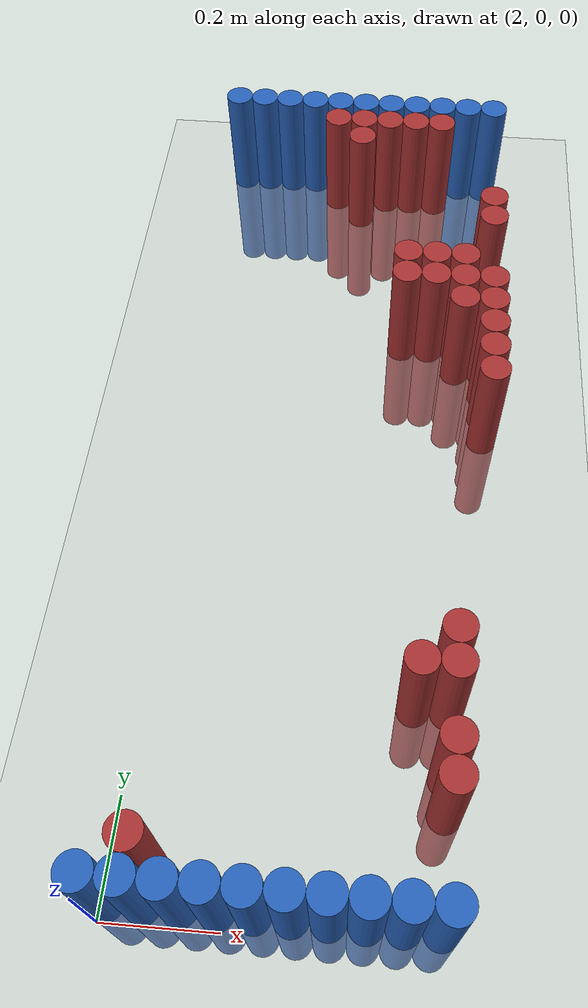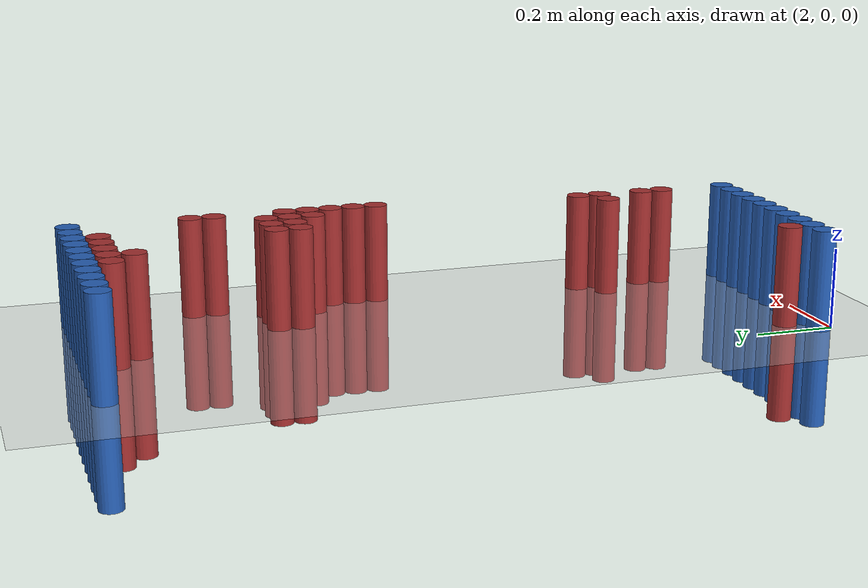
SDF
<sdf version="1.6">
 <world name="default">
  <model name="ground_plane">
   <static>1</static>
   <link name="link">
    <collision name="collision">
     <geometry><plane><normal>0 0 1</normal><size>100 100</size></plane></geometry>
     <surface><friction><ode><mu>100</mu><mu2>50</mu2></ode></friction></surface>
    </collision>
    <visual name="visual">
     <cast_shadows>0</cast_shadows>
     <geometry><plane><normal>0 0 1</normal><size>100 100</size></plane></geometry>
     <material>
      <script><uri>file://media/materials/scripts/gazebo.material</uri><name>Gazebo/Grey</name></script>
     </material>
    </visual>
   </link>
  </model>
  <model name="unit_cylinder_93">
   <static>1</static>
   <pose>2.010000 0.030000 0.000000 0.000000 0.000000 0.000000</pose>
   <link name="link">
    <inertial>
     <mass>1</mass>
     <inertia><ixx>0.145833</ixx><ixy>0</ixy><ixz>0</ixz><iyy>0.145833</iyy><iyz>0</iyz><izz>0.125</izz></inertia>
    </inertial>
    <collision name="collision">
     <geometry><cylinder><radius>0.030000</radius><length>0.5</length></cylinder></geometry>
    </collision>
    <visual name="visual">
     <geometry><cylinder><radius>0.030000</radius><length>0.5</length></cylinder></geometry>
     <material>
      <ambient>0.152000 0.379000 0.720000 1</ambient>
      <diffuse>0.152000 0.379000 0.720000 1</diffuse>
     </material>
     <material>
      <script><name>Gazebo/Grey</name><uri>file://media/materials/scripts/gazebo.material</uri></script>
     </material>
    </visual>
   </link>
  </model>
  <model name="unit_cylinder_94">
   <static>1</static>
   <pose>2.010000 1.770000 0.000000 0.000000 0.000000 0.000000</pose>
   <link name="link">
    <inertial>
     <mass>1</mass>
     <inertia><ixx>0.145833</ixx><ixy>0</ixy><ixz>0</ixz><iyy>0.145833</iyy><iyz>0</iyz><izz>0.125</izz></inertia>
    </inertial>
    <collision name="collision">
     <geometry><cylinder><radius>0.030000</radius><length>0.5</length></cylinder></geometry>
    </collision>
    <visual name="visual">
     <geometry><cylinder><radius>0.030000</radius><length>0.5</length></cylinder></geometry>
     <material>
      <ambient>0.152000 0.379000 0.720000 1</ambient>
      <diffuse>0.152000 0.379000 0.720000 1</diffuse>
     </material>
     <material>
      <script><name>Gazebo/Grey</name><uri>file://media/materials/scripts/gazebo.material</uri></script>
     </material>
    </visual>
   </link>
  </model>
  <model name="unit_cylinder_95">
   <static>1</static>
   <pose>2.070000 1.770000 0.000000 0.000000 0.000000 0.000000</pose>
   <link name="link">
    <inertial>
     <mass>1</mass>
     <inertia><ixx>0.145833</ixx><ixy>0</ixy><ixz>0</ixz><iyy>0.145833</iyy><iyz>0</iyz><izz>0.125</izz></inertia>
    </inertial>
    <collision name="collision">
     <geometry><cylinder><radius>0.030000</radius><length>0.5</length></cylinder></geometry>
    </collision>
    <visual name="visual">
     <geometry><cylinder><radius>0.030000</radius><length>0.5</length></cylinder></geometry>
     <material>
      <ambient>0.152000 0.379000 0.720000 1</ambient>
      <diffuse>0.152000 0.379000 0.720000 1</diffuse>
     </material>
     <material>
      <script><name>Gazebo/Grey</name><uri>file://media/materials/scripts/gazebo.material</uri></script>
     </material>
    </visual>
   </link>
  </model>
  <model name="unit_cylinder_96">
   <static>1</static>
   <pose>2.130000 1.770000 0.000000 0.000000 0.000000 0.000000</pose>
   <link name="link">
    <inertial>
     <mass>1</mass>
     <inertia><ixx>0.145833</ixx><ixy>0</ixy><ixz>0</ixz><iyy>0.145833</iyy><iyz>0</iyz><izz>0.125</izz></inertia>
    </inertial>
    <collision name="collision">
     <geometry><cylinder><radius>0.030000</radius><length>0.5</length></cylinder></geometry>
    </collision>
    <visual name="visual">
     <geometry><cylinder><radius>0.030000</radius><length>0.5</length></cylinder></geometry>
     <material>
      <ambient>0.152000 0.379000 0.720000 1</ambient>
      <diffuse>0.152000 0.379000 0.720000 1</diffuse>
     </material>
     <material>
      <script><name>Gazebo/Grey</name><uri>file://media/materials/scripts/gazebo.material</uri></script>
     </material>
    </visual>
   </link>
  </model>
  <model name="unit_cylinder_97">
   <static>1</static>
   <pose>2.190000 1.770000 0.000000 0.000000 0.000000 0.000000</pose>
   <link name="link">
    <inertial>
     <mass>1</mass>
     <inertia><ixx>0.145833</ixx><ixy>0</ixy><ixz>0</ixz><iyy>0.145833</iyy><iyz>0</iyz><izz>0.125</izz></inertia>
    </inertial>
    <collision name="collision">
     <geometry><cylinder><radius>0.030000</radius><length>0.5</length></cylinder></geometry>
    </collision>
    <visual name="visual">
     <geometry><cylinder><radius>0.030000</radius><length>0.5</length></cylinder></geometry>
     <material>
      <ambient>0.152000 0.379000 0.720000 1</ambient>
      <diffuse>0.152000 0.379000 0.720000 1</diffuse>
     </material>
     <material>
      <script><name>Gazebo/Grey</name><uri>file://media/materials/scripts/gazebo.material</uri></script>
     </material>
    </visual>
   </link>
  </model>
  <model name="unit_cylinder_98">
   <static>1</static>
   <pose>2.250000 1.770000 0.000000 0.000000 0.000000 0.000000</pose>
   <link name="link">
    <inertial>
     <mass>1</mass>
     <inertia><ixx>0.145833</ixx><ixy>0</ixy><ixz>0</ixz><iyy>0.145833</iyy><iyz>0</iyz><izz>0.125</izz></inertia>
    </inertial>
    <collision name="collision">
     <geometry><cylinder><radius>0.030000</radius><length>0.5</length></cylinder></geometry>
    </collision>
    <visual name="visual">
     <geometry><cylinder><radius>0.030000</radius><length>0.5</length></cylinder></geometry>
     <material>
      <ambient>0.152000 0.379000 0.720000 1</ambient>
      <diffuse>0.152000 0.379000 0.720000 1</diffuse>
     </material>
     <material>
      <script><name>Gazebo/Grey</name><uri>file://media/materials/scripts/gazebo.material</uri></script>
     </material>
    </visual>
   </link>
  </model>
  <model name="unit_cylinder_99">
   <static>1</static>
   <pose>2.310000 1.770000 0.000000 0.000000 0.000000 0.000000</pose>
   <link name="link">
    <inertial>
     <mass>1</mass>
     <inertia><ixx>0.145833</ixx><ixy>0</ixy><ixz>0</ixz><iyy>0.145833</iyy><iyz>0</iyz><izz>0.125</izz></inertia>
    </inertial>
    <collision name="collision">
     <geometry><cylinder><radius>0.030000</radius><length>0.5</length></cylinder></geometry>
    </collision>
    <visual name="visual">
     <geometry><cylinder><radius>0.030000</radius><length>0.5</length></cylinder></geometry>
     <material>
      <ambient>0.152000 0.379000 0.720000 1</ambient>
      <diffuse>0.152000 0.379000 0.720000 1</diffuse>
     </material>
     <material>
      <script><name>Gazebo/Grey</name><uri>file://media/materials/scripts/gazebo.material</uri></script>
     </material>
    </visual>
   </link>
  </model>
  <model name="unit_cylinder_100">
   <static>1</static>
   <pose>2.370000 1.770000 0.000000 0.000000 0.000000 0.000000</pose>
   <link name="link">
    <inertial>
     <mass>1</mass>
     <inertia><ixx>0.145833</ixx><ixy>0</ixy><ixz>0</ixz><iyy>0.145833</iyy><iyz>0</iyz><izz>0.125</izz></inertia>
    </inertial>
    <collision name="collision">
     <geometry><cylinder><radius>0.030000</radius><length>0.5</length></cylinder></geometry>
    </collision>
    <visual name="visual">
     <geometry><cylinder><radius>0.030000</radius><length>0.5</length></cylinder></geometry>
     <material>
      <ambient>0.152000 0.379000 0.720000 1</ambient>
      <diffuse>0.152000 0.379000 0.720000 1</diffuse>
     </material>
     <material>
      <script><name>Gazebo/Grey</name><uri>file://media/materials/scripts/gazebo.material</uri></script>
     </material>
    </visual>
   </link>
  </model>
  <model name="unit_cylinder_101">
   <static>1</static>
   <pose>2.430000 1.770000 0.000000 0.000000 0.000000 0.000000</pose>
   <link name="link">
    <inertial>
     <mass>1</mass>
     <inertia><ixx>0.145833</ixx><ixy>0</ixy><ixz>0</ixz><iyy>0.145833</iyy><iyz>0</iyz><izz>0.125</izz></inertia>
    </inertial>
    <collision name="collision">
     <geometry><cylinder><radius>0.030000</radius><length>0.5</length></cylinder></geometry>
    </collision>
    <visual name="visual">
     <geometry><cylinder><radius>0.030000</radius><length>0.5</length></cylinder></geometry>
     <material>
      <ambient>0.152000 0.379000 0.720000 1</ambient>
      <diffuse>0.152000 0.379000 0.720000 1</diffuse>
     </material>
     <material>
      <script><name>Gazebo/Grey</name><uri>file://media/materials/scripts/gazebo.material</uri></script>
     </material>
    </visual>
   </link>
  </model>
  <model name="unit_cylinder_102">
   <static>1</static>
   <pose>2.490000 1.770000 0.000000 0.000000 0.000000 0.000000</pose>
   <link name="link">
    <inertial>
     <mass>1</mass>
     <inertia><ixx>0.145833</ixx><ixy>0</ixy><ixz>0</ixz><iyy>0.145833</iyy><iyz>0</iyz><izz>0.125</izz></inertia>
    </inertial>
    <collision name="collision">
     <geometry><cylinder><radius>0.030000</radius><length>0.5</length></cylinder></geometry>
    </collision>
    <visual name="visual">
     <geometry><cylinder><radius>0.030000</radius><length>0.5</length></cylinder></geometry>
     <material>
      <ambient>0.152000 0.379000 0.720000 1</ambient>
      <diffuse>0.152000 0.379000 0.720000 1</diffuse>
     </material>
     <material>
      <script><name>Gazebo/Grey</name><uri>file://media/materials/scripts/gazebo.material</uri></script>
     </material>
    </visual>
   </link>
  </model>
  <model name="unit_cylinder_103">
   <static>1</static>
   <pose>2.550000 1.770000 0.000000 0.000000 0.000000 0.000000</pose>
   <link name="link">
    <inertial>
     <mass>1</mass>
     <inertia><ixx>0.145833</ixx><ixy>0</ixy><ixz>0</ixz><iyy>0.145833</iyy><iyz>0</iyz><izz>0.125</izz></inertia>
    </inertial>
    <collision name="collision">
     <geometry><cylinder><radius>0.030000</radius><length>0.5</length></cylinder></geometry>
    </collision>
    <visual name="visual">
     <geometry><cylinder><radius>0.030000</radius><length>0.5</length></cylinder></geometry>
     <material>
      <ambient>0.152000 0.379000 0.720000 1</ambient>
      <diffuse>0.152000 0.379000 0.720000 1</diffuse>
     </material>
     <material>
      <script><name>Gazebo/Grey</name><uri>file://media/materials/scripts/gazebo.material</uri></script>
     </material>
    </visual>
   </link>
  </model>
  <model name="unit_cylinder_104">
   <static>1</static>
   <pose>2.610000 1.770000 0.000000 0.000000 0.000000 0.000000</pose>
   <link name="link">
    <inertial>
     <mass>1</mass>
     <inertia><ixx>0.145833</ixx><ixy>0</ixy><ixz>0</ixz><iyy>0.145833</iyy><iyz>0</iyz><izz>0.125</izz></inertia>
    </inertial>
    <collision name="collision">
     <geometry><cylinder><radius>0.030000</radius><length>0.5</length></cylinder></geometry>
    </collision>
    <visual name="visual">
     <geometry><cylinder><radius>0.030000</radius><length>0.5</length></cylinder></geometry>
     <material>
      <ambient>0.152000 0.379000 0.720000 1</ambient>
      <diffuse>0.152000 0.379000 0.720000 1</diffuse>
     </material>
     <material>
      <script><name>Gazebo/Grey</name><uri>file://media/materials/scripts/gazebo.material</uri></script>
     </material>
    </visual>
   </link>
  </model>
  <model name="unit_cylinder_125">
   <static>1</static>
   <pose>2.250000 1.710000 0.000000 0.000000 0.000000 0.000000</pose>
   <link name="link">
    <inertial>
     <mass>1</mass>
     <inertia><ixx>0.145833</ixx><ixy>0</ixy><ixz>0</ixz><iyy>0.145833</iyy><iyz>0</iyz><izz>0.125</izz></inertia>
    </inertial>
    <collision name="collision">
     <geometry><cylinder><radius>0.030000</radius><length>0.5</length></cylinder></geometry>
    </collision>
    <visual name="visual">
     <geometry><cylinder><radius>0.030000</radius><length>0.5</length></cylinder></geometry>
     <material>
      <ambient>0.648000 0.192000 0.192000 1</ambient>
      <diffuse>0.648000 0.192000 0.192000 1</diffuse>
     </material>
     <material>
      <script><name>Gazebo/Grey</name><uri>file://media/materials/scripts/gazebo.material</uri></script>
     </material>
    </visual>
   </link>
  </model>
  <model name="unit_cylinder_126">
   <static>1</static>
   <pose>2.310000 1.710000 0.000000 0.000000 0.000000 0.000000</pose>
   <link name="link">
    <inertial>
     <mass>1</mass>
     <inertia><ixx>0.145833</ixx><ixy>0</ixy><ixz>0</ixz><iyy>0.145833</iyy><iyz>0</iyz><izz>0.125</izz></inertia>
    </inertial>
    <collision name="collision">
     <geometry><cylinder><radius>0.030000</radius><length>0.5</length></cylinder></geometry>
    </collision>
    <visual name="visual">
     <geometry><cylinder><radius>0.030000</radius><length>0.5</length></cylinder></geometry>
     <material>
      <ambient>0.648000 0.192000 0.192000 1</ambient>
      <diffuse>0.648000 0.192000 0.192000 1</diffuse>
     </material>
     <material>
      <script><name>Gazebo/Grey</name><uri>file://media/materials/scripts/gazebo.material</uri></script>
     </material>
    </visual>
   </link>
  </model>
  <model name="unit_cylinder_127">
   <static>1</static>
   <pose>2.370000 1.710000 0.000000 0.000000 0.000000 0.000000</pose>
   <link name="link">
    <inertial>
     <mass>1</mass>
     <inertia><ixx>0.145833</ixx><ixy>0</ixy><ixz>0</ixz><iyy>0.145833</iyy><iyz>0</iyz><izz>0.125</izz></inertia>
    </inertial>
    <collision name="collision">
     <geometry><cylinder><radius>0.030000</radius><length>0.5</length></cylinder></geometry>
    </collision>
    <visual name="visual">
     <geometry><cylinder><radius>0.030000</radius><length>0.5</length></cylinder></geometry>
     <material>
      <ambient>0.648000 0.192000 0.192000 1</ambient>
      <diffuse>0.648000 0.192000 0.192000 1</diffuse>
     </material>
     <material>
      <script><name>Gazebo/Grey</name><uri>file://media/materials/scripts/gazebo.material</uri></script>
     </material>
    </visual>
   </link>
  </model>
  <model name="unit_cylinder_128">
   <static>1</static>
   <pose>2.430000 1.710000 0.000000 0.000000 0.000000 0.000000</pose>
   <link name="link">
    <inertial>
     <mass>1</mass>
     <inertia><ixx>0.145833</ixx><ixy>0</ixy><ixz>0</ixz><iyy>0.145833</iyy><iyz>0</iyz><izz>0.125</izz></inertia>
    </inertial>
    <collision name="collision">
     <geometry><cylinder><radius>0.030000</radius><length>0.5</length></cylinder></geometry>
    </collision>
    <visual name="visual">
     <geometry><cylinder><radius>0.030000</radius><length>0.5</length></cylinder></geometry>
     <material>
      <ambient>0.648000 0.192000 0.192000 1</ambient>
      <diffuse>0.648000 0.192000 0.192000 1</diffuse>
     </material>
     <material>
      <script><name>Gazebo/Grey</name><uri>file://media/materials/scripts/gazebo.material</uri></script>
     </material>
    </visual>
   </link>
  </model>
  <model name="unit_cylinder_129">
   <static>1</static>
   <pose>2.490000 1.710000 0.000000 0.000000 0.000000 0.000000</pose>
   <link name="link">
    <inertial>
     <mass>1</mass>
     <inertia><ixx>0.145833</ixx><ixy>0</ixy><ixz>0</ixz><iyy>0.145833</iyy><iyz>0</iyz><izz>0.125</izz></inertia>
    </inertial>
    <collision name="collision">
     <geometry><cylinder><radius>0.030000</radius><length>0.5</length></cylinder></geometry>
    </collision>
    <visual name="visual">
     <geometry><cylinder><radius>0.030000</radius><length>0.5</length></cylinder></geometry>
     <material>
      <ambient>0.648000 0.192000 0.192000 1</ambient>
      <diffuse>0.648000 0.192000 0.192000 1</diffuse>
     </material>
     <material>
      <script><name>Gazebo/Grey</name><uri>file://media/materials/scripts/gazebo.material</uri></script>
     </material>
    </visual>
   </link>
  </model>
  <model name="unit_cylinder_136">
   <static>1</static>
   <pose>2.310000 1.650000 0.000000 0.000000 0.000000 0.000000</pose>
   <link name="link">
    <inertial>
     <mass>1</mass>
     <inertia><ixx>0.145833</ixx><ixy>0</ixy><ixz>0</ixz><iyy>0.145833</iyy><iyz>0</iyz><izz>0.125</izz></inertia>
    </inertial>
    <collision name="collision">
     <geometry><cylinder><radius>0.030000</radius><length>0.5</length></cylinder></geometry>
    </collision>
    <visual name="visual">
     <geometry><cylinder><radius>0.030000</radius><length>0.5</length></cylinder></geometry>
     <material>
      <ambient>0.648000 0.192000 0.192000 1</ambient>
      <diffuse>0.648000 0.192000 0.192000 1</diffuse>
     </material>
     <material>
      <script><name>Gazebo/Grey</name><uri>file://media/materials/scripts/gazebo.material</uri></script>
     </material>
    </visual>
   </link>
  </model>
  <model name="unit_cylinder_143">
   <static>1</static>
   <pose>2.610000 1.470000 0.000000 0.000000 0.000000 0.000000</pose>
   <link name="link">
    <inertial>
     <mass>1</mass>
     <inertia><ixx>0.145833</ixx><ixy>0</ixy><ixz>0</ixz><iyy>0.145833</iyy><iyz>0</iyz><izz>0.125</izz></inertia>
    </inertial>
    <collision name="collision">
     <geometry><cylinder><radius>0.030000</radius><length>0.5</length></cylinder></geometry>
    </collision>
    <visual name="visual">
     <geometry><cylinder><radius>0.030000</radius><length>0.5</length></cylinder></geometry>
     <material>
      <ambient>0.648000 0.192000 0.192000 1</ambient>
      <diffuse>0.648000 0.192000 0.192000 1</diffuse>
     </material>
     <material>
      <script><name>Gazebo/Grey</name><uri>file://media/materials/scripts/gazebo.material</uri></script>
     </material>
    </visual>
   </link>
  </model>
  <model name="unit_cylinder_144">
   <static>1</static>
   <pose>2.610000 1.410000 0.000000 0.000000 0.000000 0.000000</pose>
   <link name="link">
    <inertial>
     <mass>1</mass>
     <inertia><ixx>0.145833</ixx><ixy>0</ixy><ixz>0</ixz><iyy>0.145833</iyy><iyz>0</iyz><izz>0.125</izz></inertia>
    </inertial>
    <collision name="collision">
     <geometry><cylinder><radius>0.030000</radius><length>0.5</length></cylinder></geometry>
    </collision>
    <visual name="visual">
     <geometry><cylinder><radius>0.030000</radius><length>0.5</length></cylinder></geometry>
     <material>
      <ambient>0.648000 0.192000 0.192000 1</ambient>
      <diffuse>0.648000 0.192000 0.192000 1</diffuse>
     </material>
     <material>
      <script><name>Gazebo/Grey</name><uri>file://media/materials/scripts/gazebo.material</uri></script>
     </material>
    </visual>
   </link>
  </model>
  <model name="unit_cylinder_146">
   <static>1</static>
   <pose>2.430000 1.290000 0.000000 0.000000 0.000000 0.000000</pose>
   <link name="link">
    <inertial>
     <mass>1</mass>
     <inertia><ixx>0.145833</ixx><ixy>0</ixy><ixz>0</ixz><iyy>0.145833</iyy><iyz>0</iyz><izz>0.125</izz></inertia>
    </inertial>
    <collision name="collision">
     <geometry><cylinder><radius>0.030000</radius><length>0.5</length></cylinder></geometry>
    </collision>
    <visual name="visual">
     <geometry><cylinder><radius>0.030000</radius><length>0.5</length></cylinder></geometry>
     <material>
      <ambient>0.648000 0.192000 0.192000 1</ambient>
      <diffuse>0.648000 0.192000 0.192000 1</diffuse>
     </material>
     <material>
      <script><name>Gazebo/Grey</name><uri>file://media/materials/scripts/gazebo.material</uri></script>
     </material>
    </visual>
   </link>
  </model>
  <model name="unit_cylinder_147">
   <static>1</static>
   <pose>2.490000 1.290000 0.000000 0.000000 0.000000 0.000000</pose>
   <link name="link">
    <inertial>
     <mass>1</mass>
     <inertia><ixx>0.145833</ixx><ixy>0</ixy><ixz>0</ixz><iyy>0.145833</iyy><iyz>0</iyz><izz>0.125</izz></inertia>
    </inertial>
    <collision name="collision">
     <geometry><cylinder><radius>0.030000</radius><length>0.5</length></cylinder></geometry>
    </collision>
    <visual name="visual">
     <geometry><cylinder><radius>0.030000</radius><length>0.5</length></cylinder></geometry>
     <material>
      <ambient>0.648000 0.192000 0.192000 1</ambient>
      <diffuse>0.648000 0.192000 0.192000 1</diffuse>
     </material>
     <material>
      <script><name>Gazebo/Grey</name><uri>file://media/materials/scripts/gazebo.material</uri></script>
     </material>
    </visual>
   </link>
  </model>
  <model name="unit_cylinder_148">
   <static>1</static>
   <pose>2.550000 1.290000 0.000000 0.000000 0.000000 0.000000</pose>
   <link name="link">
    <inertial>
     <mass>1</mass>
     <inertia><ixx>0.145833</ixx><ixy>0</ixy><ixz>0</ixz><iyy>0.145833</iyy><iyz>0</iyz><izz>0.125</izz></inertia>
    </inertial>
    <collision name="collision">
     <geometry><cylinder><radius>0.030000</radius><length>0.5</length></cylinder></geometry>
    </collision>
    <visual name="visual">
     <geometry><cylinder><radius>0.030000</radius><length>0.5</length></cylinder></geometry>
     <material>
      <ambient>0.648000 0.192000 0.192000 1</ambient>
      <diffuse>0.648000 0.192000 0.192000 1</diffuse>
     </material>
     <material>
      <script><name>Gazebo/Grey</name><uri>file://media/materials/scripts/gazebo.material</uri></script>
     </material>
    </visual>
   </link>
  </model>
  <model name="unit_cylinder_149">
   <static>1</static>
   <pose>2.430000 1.230000 0.000000 0.000000 0.000000 0.000000</pose>
   <link name="link">
    <inertial>
     <mass>1</mass>
     <inertia><ixx>0.145833</ixx><ixy>0</ixy><ixz>0</ixz><iyy>0.145833</iyy><iyz>0</iyz><izz>0.125</izz></inertia>
    </inertial>
    <collision name="collision">
     <geometry><cylinder><radius>0.030000</radius><length>0.5</length></cylinder></geometry>
    </collision>
    <visual name="visual">
     <geometry><cylinder><radius>0.030000</radius><length>0.5</length></cylinder></geometry>
     <material>
      <ambient>0.648000 0.192000 0.192000 1</ambient>
      <diffuse>0.648000 0.192000 0.192000 1</diffuse>
     </material>
     <material>
      <script><name>Gazebo/Grey</name><uri>file://media/materials/scripts/gazebo.material</uri></script>
     </material>
    </visual>
   </link>
  </model>
  <model name="unit_cylinder_150">
   <static>1</static>
   <pose>2.490000 1.230000 0.000000 0.000000 0.000000 0.000000</pose>
   <link name="link">
    <inertial>
     <mass>1</mass>
     <inertia><ixx>0.145833</ixx><ixy>0</ixy><ixz>0</ixz><iyy>0.145833</iyy><iyz>0</iyz><izz>0.125</izz></inertia>
    </inertial>
    <collision name="collision">
     <geometry><cylinder><radius>0.030000</radius><length>0.5</length></cylinder></geometry>
    </collision>
    <visual name="visual">
     <geometry><cylinder><radius>0.030000</radius><length>0.5</length></cylinder></geometry>
     <material>
      <ambient>0.648000 0.192000 0.192000 1</ambient>
      <diffuse>0.648000 0.192000 0.192000 1</diffuse>
     </material>
     <material>
      <script><name>Gazebo/Grey</name><uri>file://media/materials/scripts/gazebo.material</uri></script>
     </material>
    </visual>
   </link>
  </model>
  <model name="unit_cylinder_151">
   <static>1</static>
   <pose>2.550000 1.230000 0.000000 0.000000 0.000000 0.000000</pose>
   <link name="link">
    <inertial>
     <mass>1</mass>
     <inertia><ixx>0.145833</ixx><ixy>0</ixy><ixz>0</ixz><iyy>0.145833</iyy><iyz>0</iyz><izz>0.125</izz></inertia>
    </inertial>
    <collision name="collision">
     <geometry><cylinder><radius>0.030000</radius><length>0.5</length></cylinder></geometry>
    </collision>
    <visual name="visual">
     <geometry><cylinder><radius>0.030000</radius><length>0.5</length></cylinder></geometry>
     <material>
      <ambient>0.648000 0.192000 0.192000 1</ambient>
      <diffuse>0.648000 0.192000 0.192000 1</diffuse>
     </material>
     <material>
      <script><name>Gazebo/Grey</name><uri>file://media/materials/scripts/gazebo.material</uri></script>
     </material>
    </visual>
   </link>
  </model>
  <model name="unit_cylinder_152">
   <static>1</static>
   <pose>2.610000 1.230000 0.000000 0.000000 0.000000 0.000000</pose>
   <link name="link">
    <inertial>
     <mass>1</mass>
     <inertia><ixx>0.145833</ixx><ixy>0</ixy><ixz>0</ixz><iyy>0.145833</iyy><iyz>0</iyz><izz>0.125</izz></inertia>
    </inertial>
    <collision name="collision">
     <geometry><cylinder><radius>0.030000</radius><length>0.5</length></cylinder></geometry>
    </collision>
    <visual name="visual">
     <geometry><cylinder><radius>0.030000</radius><length>0.5</length></cylinder></geometry>
     <material>
      <ambient>0.648000 0.192000 0.192000 1</ambient>
      <diffuse>0.648000 0.192000 0.192000 1</diffuse>
     </material>
     <material>
      <script><name>Gazebo/Grey</name><uri>file://media/materials/scripts/gazebo.material</uri></script>
     </material>
    </visual>
   </link>
  </model>
  <model name="unit_cylinder_153">
   <static>1</static>
   <pose>2.550000 1.170000 0.000000 0.000000 0.000000 0.000000</pose>
   <link name="link">
    <inertial>
     <mass>1</mass>
     <inertia><ixx>0.145833</ixx><ixy>0</ixy><ixz>0</ixz><iyy>0.145833</iyy><iyz>0</iyz><izz>0.125</izz></inertia>
    </inertial>
    <collision name="collision">
     <geometry><cylinder><radius>0.030000</radius><length>0.5</length></cylinder></geometry>
    </collision>
    <visual name="visual">
     <geometry><cylinder><radius>0.030000</radius><length>0.5</length></cylinder></geometry>
     <material>
      <ambient>0.648000 0.192000 0.192000 1</ambient>
      <diffuse>0.648000 0.192000 0.192000 1</diffuse>
     </material>
     <material>
      <script><name>Gazebo/Grey</name><uri>file://media/materials/scripts/gazebo.material</uri></script>
     </material>
    </visual>
   </link>
  </model>
  <model name="unit_cylinder_154">
   <static>1</static>
   <pose>2.610000 1.170000 0.000000 0.000000 0.000000 0.000000</pose>
   <link name="link">
    <inertial>
     <mass>1</mass>
     <inertia><ixx>0.145833</ixx><ixy>0</ixy><ixz>0</ixz><iyy>0.145833</iyy><iyz>0</iyz><izz>0.125</izz></inertia>
    </inertial>
    <collision name="collision">
     <geometry><cylinder><radius>0.030000</radius><length>0.5</length></cylinder></geometry>
    </collision>
    <visual name="visual">
     <geometry><cylinder><radius>0.030000</radius><length>0.5</length></cylinder></geometry>
     <material>
      <ambient>0.648000 0.192000 0.192000 1</ambient>
      <diffuse>0.648000 0.192000 0.192000 1</diffuse>
     </material>
     <material>
      <script><name>Gazebo/Grey</name><uri>file://media/materials/scripts/gazebo.material</uri></script>
     </material>
    </visual>
   </link>
  </model>
  <model name="unit_cylinder_157">
   <static>1</static>
   <pose>2.610000 1.110000 0.000000 0.000000 0.000000 0.000000</pose>
   <link name="link">
    <inertial>
     <mass>1</mass>
     <inertia><ixx>0.145833</ixx><ixy>0</ixy><ixz>0</ixz><iyy>0.145833</iyy><iyz>0</iyz><izz>0.125</izz></inertia>
    </inertial>
    <collision name="collision">
     <geometry><cylinder><radius>0.030000</radius><length>0.5</length></cylinder></geometry>
    </collision>
    <visual name="visual">
     <geometry><cylinder><radius>0.030000</radius><length>0.5</length></cylinder></geometry>
     <material>
      <ambient>0.648000 0.192000 0.192000 1</ambient>
      <diffuse>0.648000 0.192000 0.192000 1</diffuse>
     </material>
     <material>
      <script><name>Gazebo/Grey</name><uri>file://media/materials/scripts/gazebo.material</uri></script>
     </material>
    </visual>
   </link>
  </model>
  <model name="unit_cylinder_162">
   <static>1</static>
   <pose>2.610000 1.050000 0.000000 0.000000 0.000000 0.000000</pose>
   <link name="link">
    <inertial>
     <mass>1</mass>
     <inertia><ixx>0.145833</ixx><ixy>0</ixy><ixz>0</ixz><iyy>0.145833</iyy><iyz>0</iyz><izz>0.125</izz></inertia>
    </inertial>
    <collision name="collision">
     <geometry><cylinder><radius>0.030000</radius><length>0.5</length></cylinder></geometry>
    </collision>
    <visual name="visual">
     <geometry><cylinder><radius>0.030000</radius><length>0.5</length></cylinder></geometry>
     <material>
      <ambient>0.648000 0.192000 0.192000 1</ambient>
      <diffuse>0.648000 0.192000 0.192000 1</diffuse>
     </material>
     <material>
      <script><name>Gazebo/Grey</name><uri>file://media/materials/scripts/gazebo.material</uri></script>
     </material>
    </visual>
   </link>
  </model>
  <model name="unit_cylinder_167">
   <static>1</static>
   <pose>2.610000 0.990000 0.000000 0.000000 0.000000 0.000000</pose>
   <link name="link">
    <inertial>
     <mass>1</mass>
     <inertia><ixx>0.145833</ixx><ixy>0</ixy><ixz>0</ixz><iyy>0.145833</iyy><iyz>0</iyz><izz>0.125</izz></inertia>
    </inertial>
    <collision name="collision">
     <geometry><cylinder><radius>0.030000</radius><length>0.5</length></cylinder></geometry>
    </collision>
    <visual name="visual">
     <geometry><cylinder><radius>0.030000</radius><length>0.5</length></cylinder></geometry>
     <material>
      <ambient>0.648000 0.192000 0.192000 1</ambient>
      <diffuse>0.648000 0.192000 0.192000 1</diffuse>
     </material>
     <material>
      <script><name>Gazebo/Grey</name><uri>file://media/materials/scripts/gazebo.material</uri></script>
     </material>
    </visual>
   </link>
  </model>
  <model name="unit_cylinder_184">
   <static>1</static>
   <pose>2.550000 0.450000 0.000000 0.000000 0.000000 0.000000</pose>
   <link name="link">
    <inertial>
     <mass>1</mass>
     <inertia><ixx>0.145833</ixx><ixy>0</ixy><ixz>0</ixz><iyy>0.145833</iyy><iyz>0</iyz><izz>0.125</izz></inertia>
    </inertial>
    <collision name="collision">
     <geometry><cylinder><radius>0.030000</radius><length>0.5</length></cylinder></geometry>
    </collision>
    <visual name="visual">
     <geometry><cylinder><radius>0.030000</radius><length>0.5</length></cylinder></geometry>
     <material>
      <ambient>0.648000 0.192000 0.192000 1</ambient>
      <diffuse>0.648000 0.192000 0.192000 1</diffuse>
     </material>
     <material>
      <script><name>Gazebo/Grey</name><uri>file://media/materials/scripts/gazebo.material</uri></script>
     </material>
    </visual>
   </link>
  </model>
  <model name="unit_cylinder_188">
   <static>1</static>
   <pose>2.490000 0.390000 0.000000 0.000000 0.000000 0.000000</pose>
   <link name="link">
    <inertial>
     <mass>1</mass>
     <inertia><ixx>0.145833</ixx><ixy>0</ixy><ixz>0</ixz><iyy>0.145833</iyy><iyz>0</iyz><izz>0.125</izz></inertia>
    </inertial>
    <collision name="collision">
     <geometry><cylinder><radius>0.030000</radius><length>0.5</length></cylinder></geometry>
    </collision>
    <visual name="visual">
     <geometry><cylinder><radius>0.030000</radius><length>0.5</length></cylinder></geometry>
     <material>
      <ambient>0.648000 0.192000 0.192000 1</ambient>
      <diffuse>0.648000 0.192000 0.192000 1</diffuse>
     </material>
     <material>
      <script><name>Gazebo/Grey</name><uri>file://media/materials/scripts/gazebo.material</uri></script>
     </material>
    </visual>
   </link>
  </model>
  <model name="unit_cylinder_189">
   <static>1</static>
   <pose>2.550000 0.390000 0.000000 0.000000 0.000000 0.000000</pose>
   <link name="link">
    <inertial>
     <mass>1</mass>
     <inertia><ixx>0.145833</ixx><ixy>0</ixy><ixz>0</ixz><iyy>0.145833</iyy><iyz>0</iyz><izz>0.125</izz></inertia>
    </inertial>
    <collision name="collision">
     <geometry><cylinder><radius>0.030000</radius><length>0.5</length></cylinder></geometry>
    </collision>
    <visual name="visual">
     <geometry><cylinder><radius>0.030000</radius><length>0.5</length></cylinder></geometry>
     <material>
      <ambient>0.648000 0.192000 0.192000 1</ambient>
      <diffuse>0.648000 0.192000 0.192000 1</diffuse>
     </material>
     <material>
      <script><name>Gazebo/Grey</name><uri>file://media/materials/scripts/gazebo.material</uri></script>
     </material>
    </visual>
   </link>
  </model>
  <model name="unit_cylinder_194">
   <static>1</static>
   <pose>2.550000 0.270000 0.000000 0.000000 0.000000 0.000000</pose>
   <link name="link">
    <inertial>
     <mass>1</mass>
     <inertia><ixx>0.145833</ixx><ixy>0</ixy><ixz>0</ixz><iyy>0.145833</iyy><iyz>0</iyz><izz>0.125</izz></inertia>
    </inertial>
    <collision name="collision">
     <geometry><cylinder><radius>0.030000</radius><length>0.5</length></cylinder></geometry>
    </collision>
    <visual name="visual">
     <geometry><cylinder><radius>0.030000</radius><length>0.5</length></cylinder></geometry>
     <material>
      <ambient>0.648000 0.192000 0.192000 1</ambient>
      <diffuse>0.648000 0.192000 0.192000 1</diffuse>
     </material>
     <material>
      <script><name>Gazebo/Grey</name><uri>file://media/materials/scripts/gazebo.material</uri></script>
     </material>
    </visual>
   </link>
  </model>
  <model name="unit_cylinder_195">
   <static>1</static>
   <pose>2.550000 0.210000 0.000000 0.000000 0.000000 0.000000</pose>
   <link name="link">
    <inertial>
     <mass>1</mass>
     <inertia><ixx>0.145833</ixx><ixy>0</ixy><ixz>0</ixz><iyy>0.145833</iyy><iyz>0</iyz><izz>0.125</izz></inertia>
    </inertial>
    <collision name="collision">
     <geometry><cylinder><radius>0.030000</radius><length>0.5</length></cylinder></geometry>
    </collision>
    <visual name="visual">
     <geometry><cylinder><radius>0.030000</radius><length>0.5</length></cylinder></geometry>
     <material>
      <ambient>0.648000 0.192000 0.192000 1</ambient>
      <diffuse>0.648000 0.192000 0.192000 1</diffuse>
     </material>
     <material>
      <script><name>Gazebo/Grey</name><uri>file://media/materials/scripts/gazebo.material</uri></script>
     </material>
    </visual>
   </link>
  </model>
  <model name="unit_cylinder_198">
   <static>1</static>
   <pose>2.070000 0.090000 0.000000 0.000000 0.000000 0.000000</pose>
   <link name="link">
    <inertial>
     <mass>1</mass>
     <inertia><ixx>0.145833</ixx><ixy>0</ixy><ixz>0</ixz><iyy>0.145833</iyy><iyz>0</iyz><izz>0.125</izz></inertia>
    </inertial>
    <collision name="collision">
     <geometry><cylinder><radius>0.030000</radius><length>0.5</length></cylinder></geometry>
    </collision>
    <visual name="visual">
     <geometry><cylinder><radius>0.030000</radius><length>0.5</length></cylinder></geometry>
     <material>
      <ambient>0.648000 0.192000 0.192000 1</ambient>
      <diffuse>0.648000 0.192000 0.192000 1</diffuse>
     </material>
     <material>
      <script><name>Gazebo/Grey</name><uri>file://media/materials/scripts/gazebo.material</uri></script>
     </material>
    </visual>
   </link>
  </model>
  <model name="unit_cylinder_203">
   <static>1</static>
   <pose>2.070000 0.030000 0.000000 0.000000 0.000000 0.000000</pose>
   <link name="link">
    <inertial>
     <mass>1</mass>
     <inertia><ixx>0.145833</ixx><ixy>0</ixy><ixz>0</ixz><iyy>0.145833</iyy><iyz>0</iyz><izz>0.125</izz></inertia>
    </inertial>
    <collision name="collision">
     <geometry><cylinder><radius>0.030000</radius><length>0.5</length></cylinder></geometry>
    </collision>
    <visual name="visual">
     <geometry><cylinder><radius>0.030000</radius><length>0.5</length></cylinder></geometry>
     <material>
      <ambient>0.152000 0.379000 0.720000 1</ambient>
      <diffuse>0.152000 0.379000 0.720000 1</diffuse>
     </material>
     <material>
      <script><name>Gazebo/Grey</name><uri>file://media/materials/scripts/gazebo.material</uri></script>
     </material>
    </visual>
   </link>
  </model>
  <model name="unit_cylinder_204">
   <static>1</static>
   <pose>2.130000 0.030000 0.000000 0.000000 0.000000 0.000000</pose>
   <link name="link">
    <inertial>
     <mass>1</mass>
     <inertia><ixx>0.145833</ixx><ixy>0</ixy><ixz>0</ixz><iyy>0.145833</iyy><iyz>0</iyz><izz>0.125</izz></inertia>
    </inertial>
    <collision name="collision">
     <geometry><cylinder><radius>0.030000</radius><length>0.5</length></cylinder></geometry>
    </collision>
    <visual name="visual">
     <geometry><cylinder><radius>0.030000</radius><length>0.5</length></cylinder></geometry>
     <material>
      <ambient>0.152000 0.379000 0.720000 1</ambient>
      <diffuse>0.152000 0.379000 0.720000 1</diffuse>
     </material>
     <material>
      <script><name>Gazebo/Grey</name><uri>file://media/materials/scripts/gazebo.material</uri></script>
     </material>
    </visual>
   </link>
  </model>
  <model name="unit_cylinder_205">
   <static>1</static>
   <pose>2.190000 0.030000 0.000000 0.000000 0.000000 0.000000</pose>
   <link name="link">
    <inertial>
     <mass>1</mass>
     <inertia><ixx>0.145833</ixx><ixy>0</ixy><ixz>0</ixz><iyy>0.145833</iyy><iyz>0</iyz><izz>0.125</izz></inertia>
    </inertial>
    <collision name="collision">
     <geometry><cylinder><radius>0.030000</radius><length>0.5</length></cylinder></geometry>
    </collision>
    <visual name="visual">
     <geometry><cylinder><radius>0.030000</radius><length>0.5</length></cylinder></geometry>
     <material>
      <ambient>0.152000 0.379000 0.720000 1</ambient>
      <diffuse>0.152000 0.379000 0.720000 1</diffuse>
     </material>
     <material>
      <script><name>Gazebo/Grey</name><uri>file://media/materials/scripts/gazebo.material</uri></script>
     </material>
    </visual>
   </link>
  </model>
  <model name="unit_cylinder_206">
   <static>1</static>
   <pose>2.250000 0.030000 0.000000 0.000000 0.000000 0.000000</pose>
   <link name="link">
    <inertial>
     <mass>1</mass>
     <inertia><ixx>0.145833</ixx><ixy>0</ixy><ixz>0</ixz><iyy>0.145833</iyy><iyz>0</iyz><izz>0.125</izz></inertia>
    </inertial>
    <collision name="collision">
     <geometry><cylinder><radius>0.030000</radius><length>0.5</length></cylinder></geometry>
    </collision>
    <visual name="visual">
     <geometry><cylinder><radius>0.030000</radius><length>0.5</length></cylinder></geometry>
     <material>
      <ambient>0.152000 0.379000 0.720000 1</ambient>
      <diffuse>0.152000 0.379000 0.720000 1</diffuse>
     </material>
     <material>
      <script><name>Gazebo/Grey</name><uri>file://media/materials/scripts/gazebo.material</uri></script>
     </material>
    </visual>
   </link>
  </model>
  <model name="unit_cylinder_207">
   <static>1</static>
   <pose>2.310000 0.030000 0.000000 0.000000 0.000000 0.000000</pose>
   <link name="link">
    <inertial>
     <mass>1</mass>
     <inertia><ixx>0.145833</ixx><ixy>0</ixy><ixz>0</ixz><iyy>0.145833</iyy><iyz>0</iyz><izz>0.125</izz></inertia>
    </inertial>
    <collision name="collision">
     <geometry><cylinder><radius>0.030000</radius><length>0.5</length></cylinder></geometry>
    </collision>
    <visual name="visual">
     <geometry><cylinder><radius>0.030000</radius><length>0.5</length></cylinder></geometry>
     <material>
      <ambient>0.152000 0.379000 0.720000 1</ambient>
      <diffuse>0.152000 0.379000 0.720000 1</diffuse>
     </material>
     <material>
      <script><name>Gazebo/Grey</name><uri>file://media/materials/scripts/gazebo.material</uri></script>
     </material>
    </visual>
   </link>
  </model>
  <model name="unit_cylinder_208">
   <static>1</static>
   <pose>2.370000 0.030000 0.000000 0.000000 0.000000 0.000000</pose>
   <link name="link">
    <inertial>
     <mass>1</mass>
     <inertia><ixx>0.145833</ixx><ixy>0</ixy><ixz>0</ixz><iyy>0.145833</iyy><iyz>0</iyz><izz>0.125</izz></inertia>
    </inertial>
    <collision name="collision">
     <geometry><cylinder><radius>0.030000</radius><length>0.5</length></cylinder></geometry>
    </collision>
    <visual name="visual">
     <geometry><cylinder><radius>0.030000</radius><length>0.5</length></cylinder></geometry>
     <material>
      <ambient>0.152000 0.379000 0.720000 1</ambient>
      <diffuse>0.152000 0.379000 0.720000 1</diffuse>
     </material>
     <material>
      <script><name>Gazebo/Grey</name><uri>file://media/materials/scripts/gazebo.material</uri></script>
     </material>
    </visual>
   </link>
  </model>
  <model name="unit_cylinder_209">
   <static>1</static>
   <pose>2.430000 0.030000 0.000000 0.000000 0.000000 0.000000</pose>
   <link name="link">
    <inertial>
     <mass>1</mass>
     <inertia><ixx>0.145833</ixx><ixy>0</ixy><ixz>0</ixz><iyy>0.145833</iyy><iyz>0</iyz><izz>0.125</izz></inertia>
    </inertial>
    <collision name="collision">
     <geometry><cylinder><radius>0.030000</radius><length>0.5</length></cylinder></geometry>
    </collision>
    <visual name="visual">
     <geometry><cylinder><radius>0.030000</radius><length>0.5</length></cylinder></geometry>
     <material>
      <ambient>0.152000 0.379000 0.720000 1</ambient>
      <diffuse>0.152000 0.379000 0.720000 1</diffuse>
     </material>
     <material>
      <script><name>Gazebo/Grey</name><uri>file://media/materials/scripts/gazebo.material</uri></script>
     </material>
    </visual>
   </link>
  </model>
  <model name="unit_cylinder_210">
   <static>1</static>
   <pose>2.490000 0.030000 0.000000 0.000000 0.000000 0.000000</pose>
   <link name="link">
    <inertial>
     <mass>1</mass>
     <inertia><ixx>0.145833</ixx><ixy>0</ixy><ixz>0</ixz><iyy>0.145833</iyy><iyz>0</iyz><izz>0.125</izz></inertia>
    </inertial>
    <collision name="collision">
     <geometry><cylinder><radius>0.030000</radius><length>0.5</length></cylinder></geometry>
    </collision>
    <visual name="visual">
     <geometry><cylinder><radius>0.030000</radius><length>0.5</length></cylinder></geometry>
     <material>
      <ambient>0.152000 0.379000 0.720000 1</ambient>
      <diffuse>0.152000 0.379000 0.720000 1</diffuse>
     </material>
     <material>
      <script><name>Gazebo/Grey</name><uri>file://media/materials/scripts/gazebo.material</uri></script>
     </material>
    </visual>
   </link>
  </model>
  <model name="unit_cylinder_211">
   <static>1</static>
   <pose>2.550000 0.030000 0.000000 0.000000 0.000000 0.000000</pose>
   <link name="link">
    <inertial>
     <mass>1</mass>
     <inertia><ixx>0.145833</ixx><ixy>0</ixy><ixz>0</ixz><iyy>0.145833</iyy><iyz>0</iyz><izz>0.125</izz></inertia>
    </inertial>
    <collision name="collision">
     <geometry><cylinder><radius>0.030000</radius><length>0.5</length></cylinder></geometry>
    </collision>
    <visual name="visual">
     <geometry><cylinder><radius>0.030000</radius><length>0.5</length></cylinder></geometry>
     <material>
      <ambient>0.152000 0.379000 0.720000 1</ambient>
      <diffuse>0.152000 0.379000 0.720000 1</diffuse>
     </material>
     <material>
      <script><name>Gazebo/Grey</name><uri>file://media/materials/scripts/gazebo.material</uri></script>
     </material>
    </visual>
   </link>
  </model>
 </world>
</sdf>
